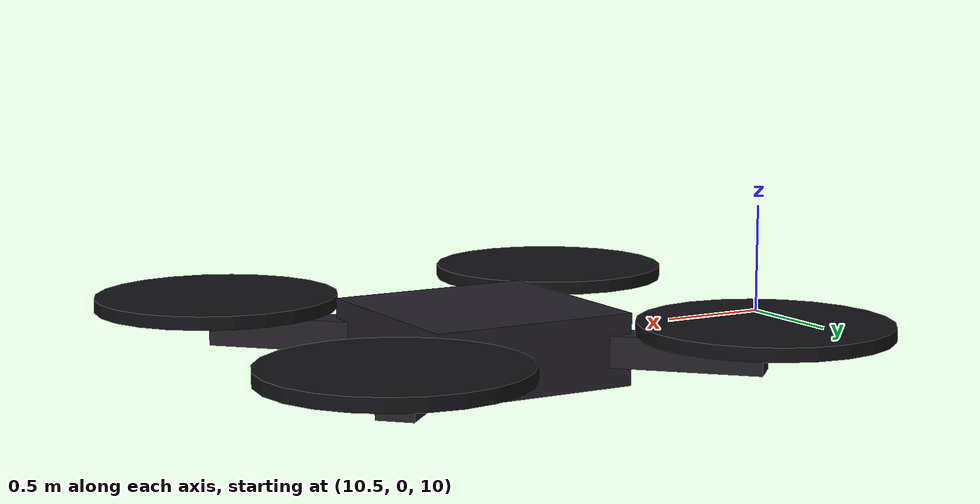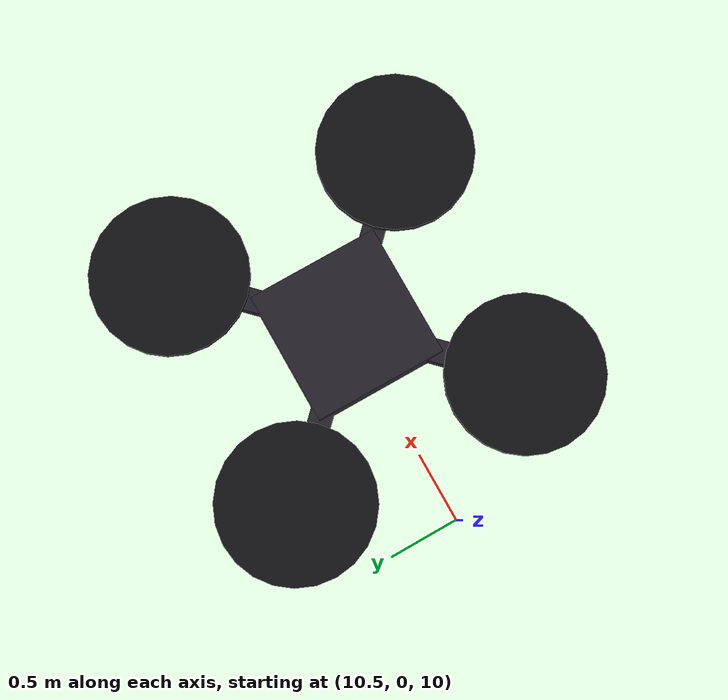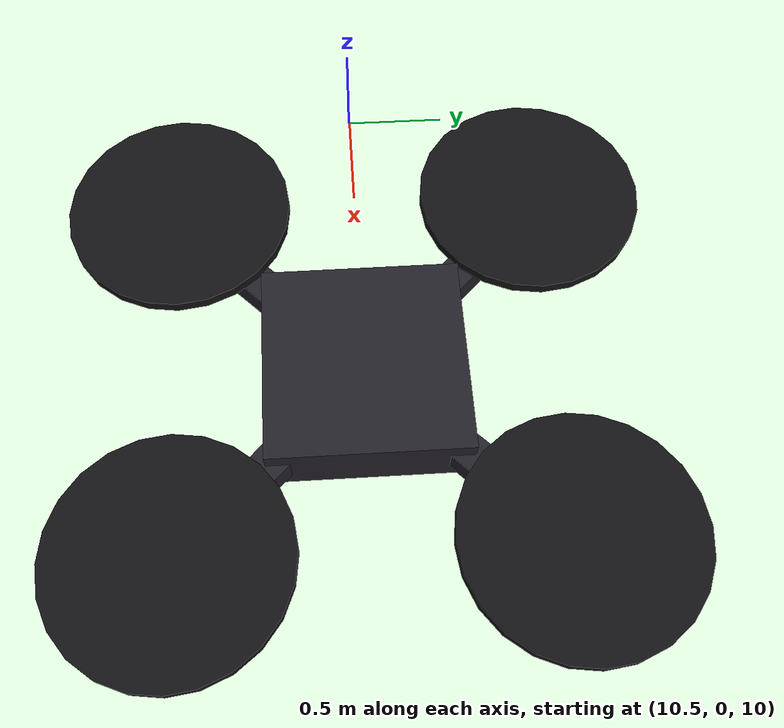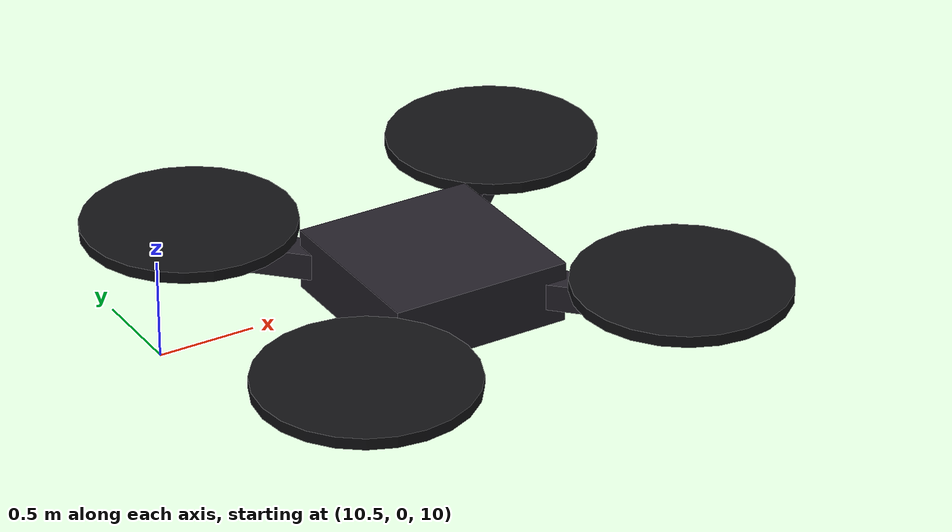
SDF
<?xml version="1.0" ?>
<sdf version="1.9">
  <model name="intruder">
    <static>true</static>
    <pose>12 0 10 0 0 0</pose>
    <link name="body">
      <visual name="hull">
        <geometry><box><size>0.95 0.95 0.32</size></box></geometry>
        <material><ambient>0.10 0.10 0.12 1</ambient><diffuse>0.14 0.13 0.16 1</diffuse><specular>0.02 0.02 0.02 1</specular></material>
      </visual>
      <visual name="arm_0"><pose>0 0 0 0 0 0.7854</pose>
        <geometry><box><size>0.16 2.5 0.14</size></box></geometry>
        <material><ambient>0.10 0.10 0.12 1</ambient><diffuse>0.14 0.13 0.16 1</diffuse><specular>0.02 0.02 0.02 1</specular></material></visual>
      <visual name="arm_1"><pose>0 0 0 0 0 -0.7854</pose>
        <geometry><box><size>0.16 2.5 0.14</size></box></geometry>
        <material><ambient>0.10 0.10 0.12 1</ambient><diffuse>0.14 0.13 0.16 1</diffuse><specular>0.02 0.02 0.02 1</specular></material></visual>
      <visual name="rotor_0"><pose>0.88 0.88 0.12 0 0 0</pose>
        <geometry><cylinder><radius>0.55</radius><length>0.06</length></cylinder></geometry>
        <material><ambient>0.05 0.05 0.06 1</ambient><diffuse>0.07 0.07 0.08 1</diffuse><specular>0.02 0.02 0.02 1</specular></material></visual>
      <visual name="rotor_1"><pose>-0.88 0.88 0.12 0 0 0</pose>
        <geometry><cylinder><radius>0.55</radius><length>0.06</length></cylinder></geometry>
        <material><ambient>0.05 0.05 0.06 1</ambient><diffuse>0.07 0.07 0.08 1</diffuse><specular>0.02 0.02 0.02 1</specular></material></visual>
      <visual name="rotor_2"><pose>0.88 -0.88 0.12 0 0 0</pose>
        <geometry><cylinder><radius>0.55</radius><length>0.06</length></cylinder></geometry>
        <material><ambient>0.05 0.05 0.06 1</ambient><diffuse>0.07 0.07 0.08 1</diffuse><specular>0.02 0.02 0.02 1</specular></material></visual>
      <visual name="rotor_3"><pose>-0.88 -0.88 0.12 0 0 0</pose>
        <geometry><cylinder><radius>0.55</radius><length>0.06</length></cylinder></geometry>
        <material><ambient>0.05 0.05 0.06 1</ambient><diffuse>0.07 0.07 0.08 1</diffuse><specular>0.02 0.02 0.02 1</specular></material></visual>
    </link>
  </model>
</sdf>
